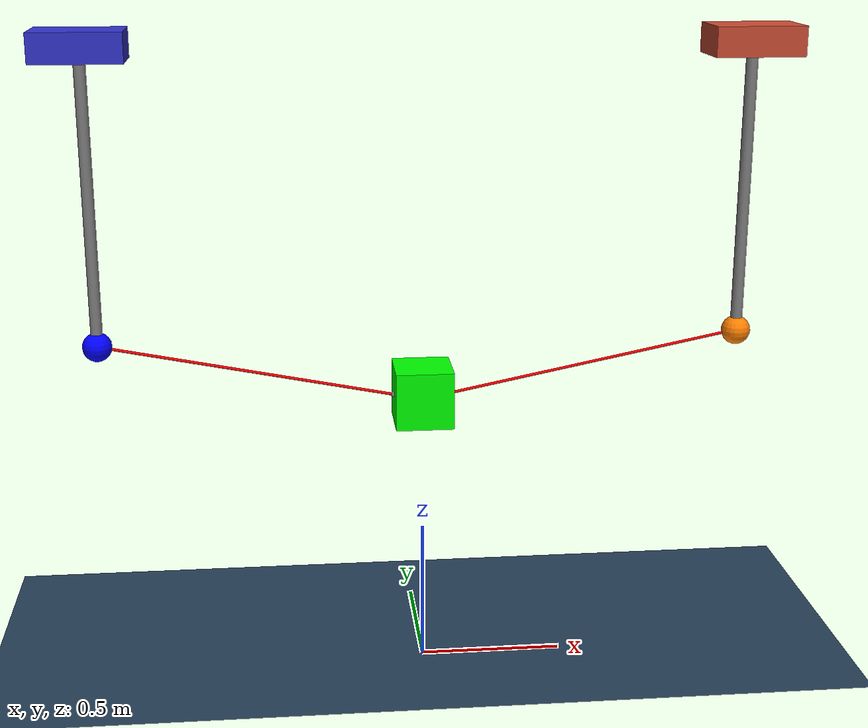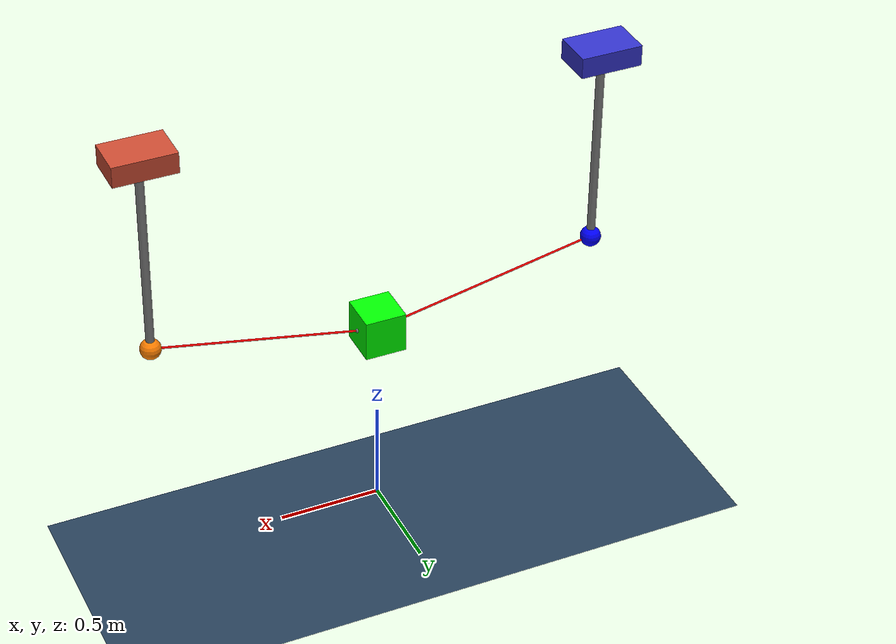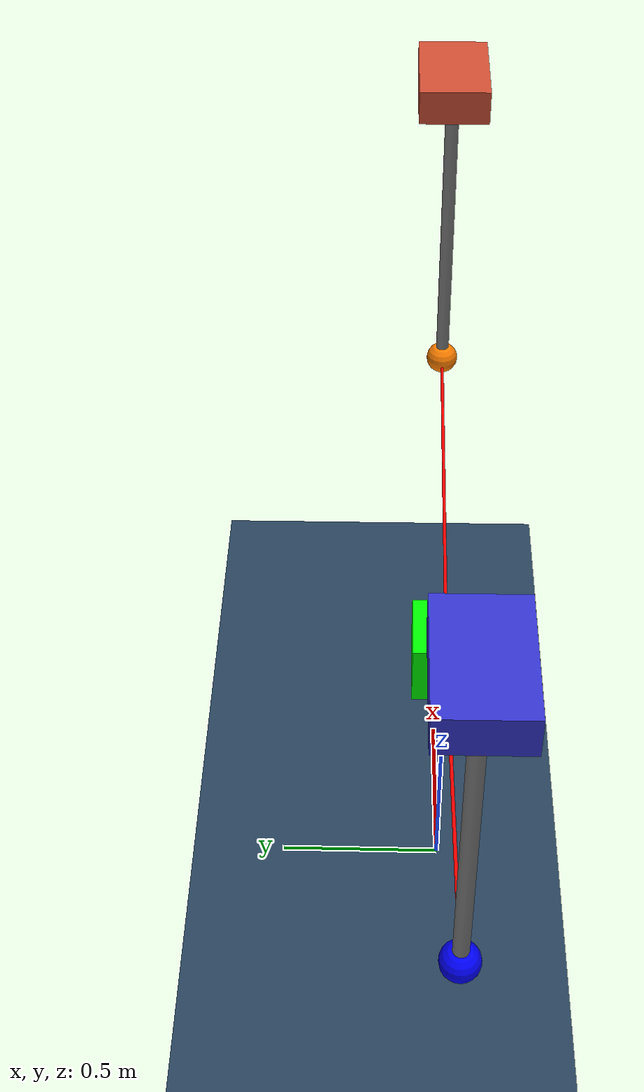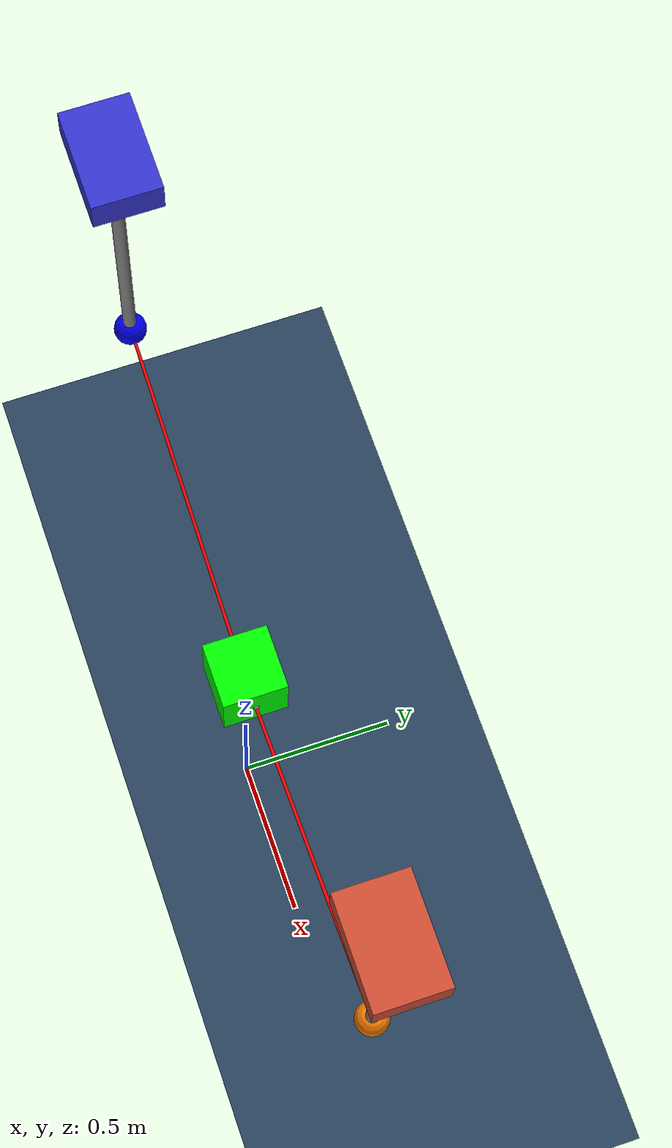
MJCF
<mujoco model="linked-cart-poles">

    <compiler angle="radian"/>
    <option integrator="implicitfast" timestep="0.01" gravity="0 0 -9.81"/>

    <asset>
        <texture type="skybox" builtin="gradient" rgb1="0.6 0.7 0.9" rgb2="0.3 0.3 0.4" width="512" height="3072"/>
        <texture type="2d" name="groundplane" builtin="checker" mark="edge" rgb1="0.2 0.3 0.4" rgb2="0.1 0.2 0.3" markrgb="0.8 0.8 0.8" width="300" height="300"/>
        <material name="groundplane" texture="groundplane" texuniform="true" texrepeat="5 5" reflectance="0.2"/>
    </asset>

    <worldbody>
        <light name="global_light" directional="true" diffuse="1 1 1"/>
        <geom name="floor" pos="0 0 0" size="0 0 0.05" type="plane" material="groundplane" contype="0" conaffinity="0"/>

        <!-- CART + PENDULUM 0 -->
        <body name="cart:0" pos="-1.1 0 2.2">
            <joint name="slide:0" type="slide" axis="1 0 0" stiffness="0" damping="0"/>
            <geom name="cart_geom:0" type="box" size="0.15 0.1 0.05" rgba="0.2 0.2 0.8 1" mass="1" contype="0" conaffinity="0"/>

            <!-- pendulum hanging from cart -->
            <body name="pendulum:0" pos="0 0 0.0">
                <joint name="hinge:0" type="hinge" axis="0 1 0" pos="0 0 0" limited="false" damping="0.05"/>

                <geom name="rod:0" type="capsule" fromto="0 0 0 0 0 -1" size="0.02" mass="1" contype="0" conaffinity="0"/>
                <geom name="bob:0" type="sphere" pos="0 0 -1" size="0.05" rgba="0 0 1 1" mass="0.05" contype="0" conaffinity="0"/>
                <site name="site:0" pos="0 0 -1" size="0.01"/>
            </body>
        </body>

        <!-- CART + PENDULUM 1 -->
        <body name="cart:1" pos="1.1 0 2.2">
            <joint name="slide:1" type="slide" axis="1 0 0" stiffness="0" damping="0"/>
            <geom name="cart_geom:1" type="box" size="0.15 0.1 0.05" rgba="0.8 0.3 0.2 1" mass="1" contype="0" conaffinity="0"/>

            <body name="pendulum:1" pos="0 0 0.0">
                <joint name="hinge:1" type="hinge" axis="0 1 0" pos="0 0 0" limited="false" damping="0.05"/>

                <geom name="rod:1" type="capsule" fromto="0 0 0 0 0 -1" size="0.02" mass="1" contype="0" conaffinity="0"/>
                <geom name="bob:1" type="sphere" pos="0 0 -1" size="0.05" rgba="1 0.5 0 1" mass="0.05" contype="0" conaffinity="0"/>
                <site name="site:1" pos="0 0 -1" size="0.01"/>
            </body>
        </body>

        <body name="box" pos="0 0 1.0">
            <joint name="box_slide_x" type="slide" axis="1 0 0"/>
            <joint name="box_slide_z" type="slide" axis="0 0 1"/>
            <geom type="box" size="0.1 0.1 0.1" mass="0.5" contype="0" conaffinity="0" rgba="0 1 0 1"/>g

            <site name="box_site_l" pos="-0.1 0 0" size="0.01"/>
            <site name="box_site_r" pos=" 0.1 0 0" size="0.01"/>
        </body>

    </worldbody>

    <tendon>
        <spatial name="spring_left_box" stiffness="3.0" damping="0.1" springlength="1.1" rgba="1 0 0 1" width="0.005">
            <site site="site:0"/>
            <site site="box_site_l"/>
        </spatial>

        <spatial name="spring_right_box" stiffness="3.0" damping="0.1" springlength="1.1" rgba="1 0 0 1" width="0.005">
            <site site="box_site_r"/>
            <site site="site:1"/>
        </spatial>
    </tendon>

    <actuator>
        <motor joint="hinge:0" gear="1"/>
        <motor joint="hinge:1" gear="1"/>
        <motor name="cart_force_1" joint="slide:1" gear="1.0"/>
    </actuator>
</mujoco>
